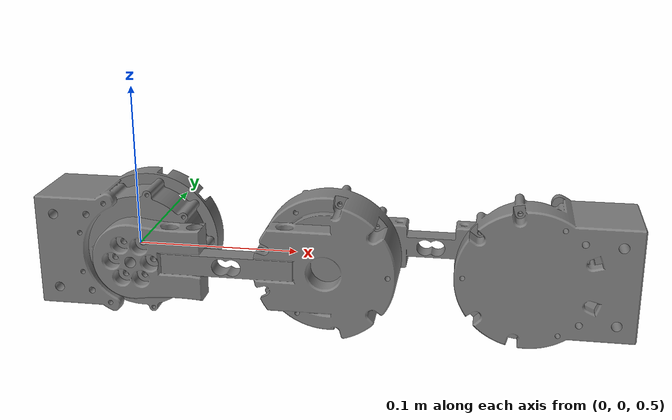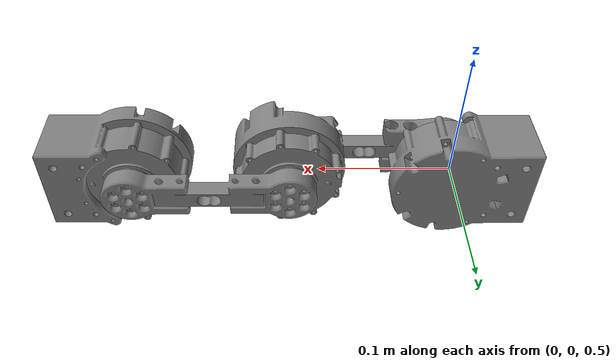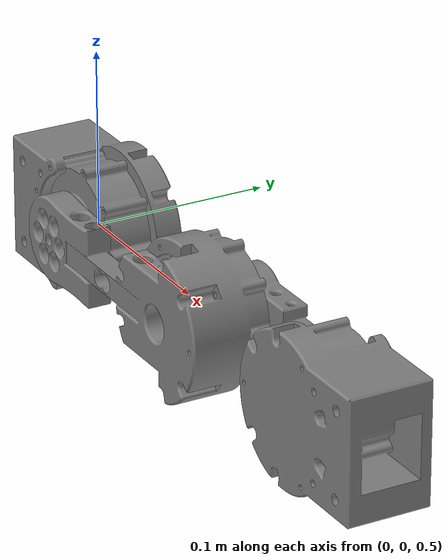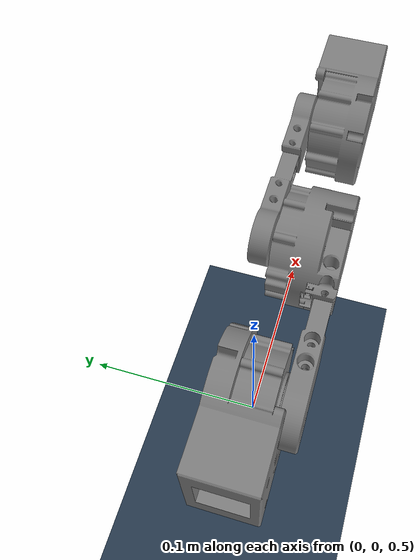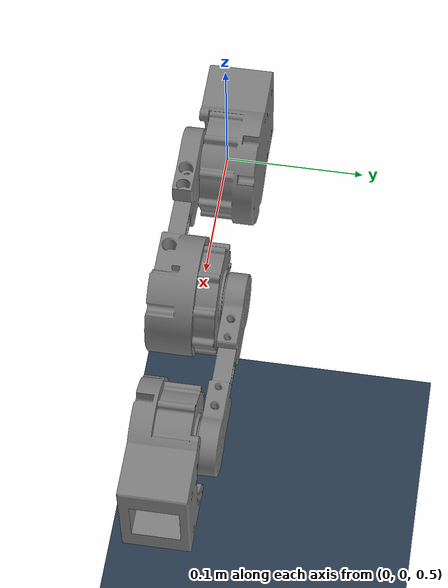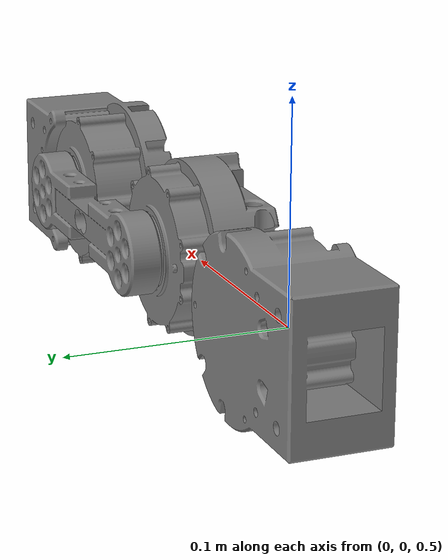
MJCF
<mujoco model="spine">
    <compiler angle="radian" meshdir="./meshes/"/>
    <option timestep="1e-3"
            iterations="10"
            tolerance="1e-10"
            impratio="10"
            gravity="0 0 -9.81"
            solver="CG"
            cone="elliptic"/>
    <asset>
        <mesh name="hind_body" file="hind_spine.stl" scale="0.001 0.001 0.001"/>
        <mesh name="hind_spine" file="hind_mid_spine.stl" scale="0.001 0.001 0.001"/>
        <mesh name="front_spine" file="front_mid_spine.stl" scale="0.001 0.001 0.001"/>
        <mesh name="front_body" file="front_spine.stl" scale="0.001 0.001 0.001"/>

        <texture builtin="gradient" height="256" rgb1=".9 .9 1." rgb2=".2 .3 .4" type="skybox" width="256"/>
        <texture builtin="checker" height="512" name="texplane" rgb1=".2 .3 .4" rgb2=".1 0.15 0.2" type="2d"
                 width="512"/>
        <material name="floorplane" reflectance="0.2" texrepeat="5 5" texture="texplane" texuniform="true"/>
    </asset>

    <default>
        <default class="spined_dog_defaults">
            <joint axis="0 1 0" range="-10 10" actuatorfrcrange="-12 12" damping="0.0" frictionloss="0.0"/>
        </default>
    </default>

    <worldbody>
        <geom name="floor0" pos="0. 0. 0." size="3 3 .125" type="plane" condim="3" material="floorplane"/>
        <light directional="true" ambient="0.2 0.2 0.2" diffuse="0.8 0.8 0.8" specular="0.3 0.3 0.3" castshadow="false"
               pos="0 0 4" dir="0 0 -1" name="light0"/>

        <!-- ROOT BODY with FREEJOINT for floating base -->
        <body name="hind_body" pos="0 0 0.5" quat="1 0 0 0" childclass="spined_dog_defaults">
            <inertial pos="0 0 0" mass="0.377"
                diaginertia="0.0001832 0.0003327 0.0002337"/>
            <!-- FREEJOINT: Provides 6-DOF floating base (3 translation + 3 rotation) -->
            <geom pos="0 0 0" type="mesh" contype="0" conaffinity="0" group="1" density="0" mesh="hind_body"/>
            <!-- LINK 2 -->
            <body name="hind_spine" pos="0.00454 -0.017638872 0">
                <inertial pos="0.109455866 0.014797864 0" mass="0.399"
                          diaginertia="0.0001953 0.0005357 0.0004759"/>
                <!-- JOINT 1: First revolute joint -->
                <joint name="joint_hind_spine" pos="0 0 0"/>
                <geom pos="0 0 0" type="mesh" contype="0" conaffinity="1" group="1" density="0" mesh="hind_spine"
                      condim="1"/>

                <!-- LINK 3 -->
                <body name="front_spine" pos="0.1175 0.036 0">
                    <inertial pos="0.05875 0.0073 0" mass="0.052"
                              diaginertia="0.0000036976 0.000084358 0.000082312887603"/>
                    <!-- JOINT 2: Second revolute joint -->
                    <joint name="joint_front_spine" pos="0 0 0"/>
                    <geom pos="0 0 0" type="mesh" contype="0" conaffinity="1" group="1" density="0"
                          mesh="front_spine" condim="1"/>

                    <!-- LINK 4 -->
                    <body name="front_body" pos="0.1175 0 0">
                        <inertial pos="0.00454141 -0.017638872 0" mass="0.377197524"
                            diaginertia="0.0001832 0.0003327 0.0002337"/>
                        <!-- JOINT 3: Third revolute joint -->
                        <joint name="joint_front_body" pos="0 0 0"/>
                        <geom pos="0 0 0" type="mesh" contype="0" conaffinity="1" group="1" density="0"
                              mesh="front_body" condim="1"/>
                    </body>
                </body>
            </body>
        </body>
    </worldbody>

    <actuator>
        <!-- Only actuate the 3 spine joints, NOT the freejoint -->
        <motor joint="joint_hind_spine" name="motor_hind_spine" gear="1" ctrllimited="true"
               ctrlrange="-12.0 12.0"/>
        <motor joint="joint_front_spine" name="motor_front_spine" gear="1" ctrllimited="true"
               ctrlrange="-12.0 12.0"/>
        <motor joint="joint_front_body" name="motor_front_body" gear="1" ctrllimited="true"
               ctrlrange="-12.0 12.0"/>
    </actuator>

    <sensor>
        <!-- Joint positions -->
        <jointpos name="pos_joint_hind_spine" joint="joint_hind_spine"/>
        <jointpos name="pos_joint_front_spine" joint="joint_front_spine"/>
        <jointpos name="pos_joint_front_body" joint="joint_front_body"/>

        <!-- Joint velocities -->
        <jointvel name="vel_joint_hind_spine" joint="joint_hind_spine"/>
        <jointvel name="vel_joint_front_spine" joint="joint_front_spine"/>
        <jointvel name="vel_joint_front_body" joint="joint_front_body"/>

        <!-- Joint torques -->
        <jointactuatorfrc name="torque_joint_hind_spine" joint="joint_hind_spine" noise="0.0"/>
        <jointactuatorfrc name="torque_joint_front_spine" joint="joint_front_spine" noise="0.0"/>
        <jointactuatorfrc name="torque_joint_front_body" joint="joint_front_body" noise="0.0"/>

        <!-- Optional: Sensors for floating base state -->
        <framepos name="base_position" objtype="body" objname="hind_body"/>
        <framequat name="base_orientation" objtype="body" objname="hind_body"/>
        <framelinvel name="base_linear_velocity" objtype="body" objname="hind_body"/>
        <frameangvel name="base_angular_velocity" objtype="body" objname="hind_body"/>
    </sensor>
</mujoco>
